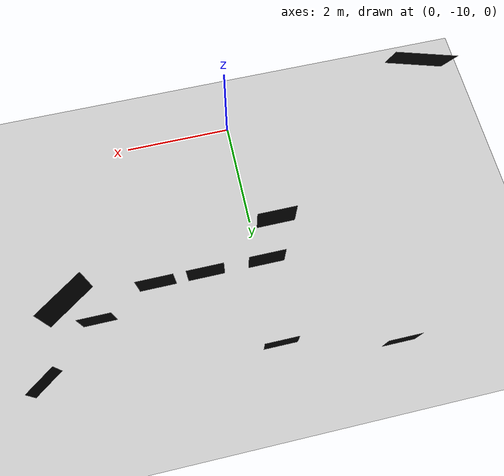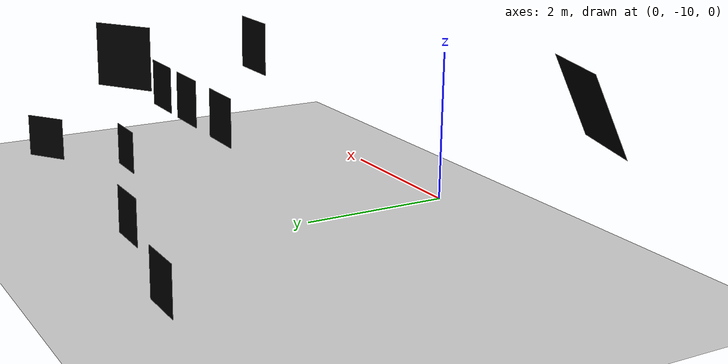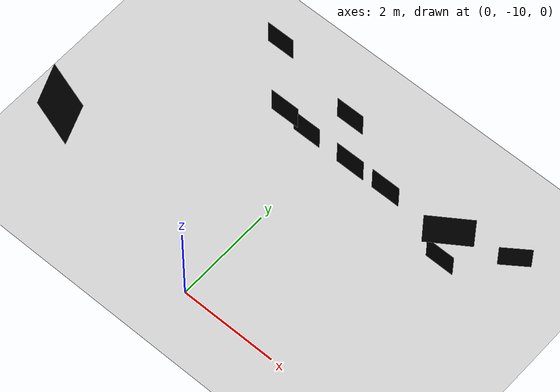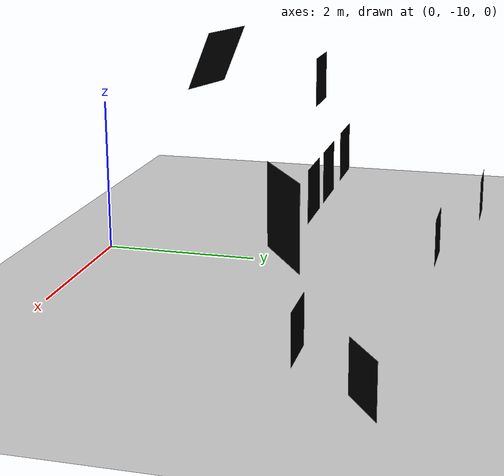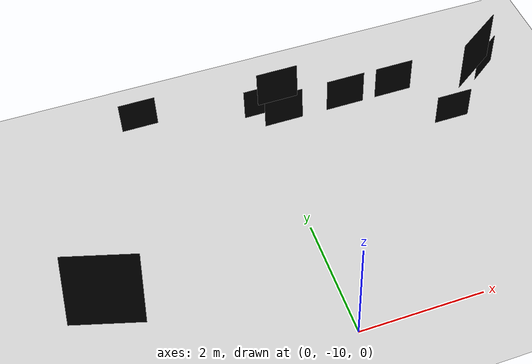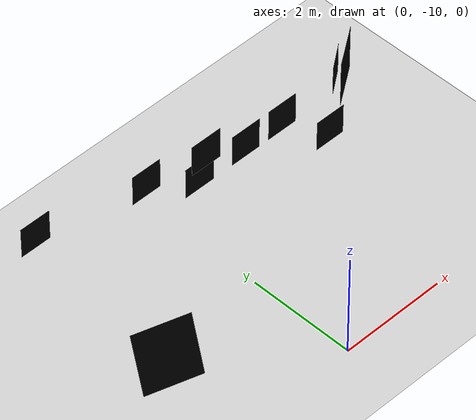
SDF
<sdf version="1.10">
 <world name="empty">
  <physics name="1ms" type="ignored">
   <max_step_size>0.001</max_step_size>
   <real_time_factor>1</real_time_factor>
   <real_time_update_rate>1000</real_time_update_rate>
  </physics>
  <plugin name="gz::sim::systems::Physics" filename="gz-sim-physics-system"/>
  <plugin name="gz::sim::systems::UserCommands" filename="gz-sim-user-commands-system"/>
  <plugin name="gz::sim::systems::SceneBroadcaster" filename="gz-sim-scene-broadcaster-system"/>
  <plugin name="gz::sim::systems::Contact" filename="gz-sim-contact-system"/>
  <plugin name="gz::sim::systems::Sensors" filename="gz-sim-sensors-system">
   <render_engine>ogre</render_engine>
  </plugin>
  <gravity>0 0 -9.8000000000000007</gravity>
  <magnetic_field>5.5644999999999998e-06 2.2875799999999999e-05 -4.2388400000000002e-05</magnetic_field>
  <atmosphere type="adiabatic"/>
  <scene>
   <ambient>0.400000006 0.400000006 0.400000006 1</ambient>
   <background>0.699999988 0.699999988 0.699999988 1</background>
   <shadows>true</shadows>
  </scene>
  <model name="ground_plane">
   <static>true</static>
   <link name="link">
    <collision name="collision">
     <geometry><plane><normal>0 0 1</normal><size>100 100</size></plane></geometry>
    </collision>
    <visual name="visual">
     <geometry><plane><normal>0 0 1</normal><size>100 100</size></plane></geometry>
     <material>
      <ambient>0.800000012 0.800000012 0.800000012 1</ambient>
      <diffuse>0.800000012 0.800000012 0.800000012 1</diffuse>
      <specular>0.800000012 0.800000012 0.800000012 1</specular>
     </material>
    </visual>
    <inertial>
     <mass>1</mass>
     <inertia><ixx>1</ixx><ixy>0</ixy><ixz>0</ixz><iyy>1</iyy><iyz>0</iyz><izz>1</izz></inertia>
    </inertial>
   </link>
  </model>
  <model name="drone_test">
   <static>true</static>
   <pose>0 -6.8000000000000016 1.5237000000000007 -1.5700000000000001 0 0</pose>
   <link name="link">
    <visual name="visual">
     <geometry><box><size>0.59999999999999998 0.59999999999999998 0.00050000000000000001</size></box></geometry>
     <material>
      <diffuse>0 0 0 1</diffuse>
      <specular>0 0 0 1</specular>
      <emissive>1 1 1 1</emissive>
      <pbr>
       <metal>
        <albedo_map>materials/textures/drone2.jpg</albedo_map>
        <emissive_map>materials/textures/drone2.jpg</emissive_map>
        <metalness>0.0</metalness>
        <roughness>1.0</roughness>
       </metal>
      </pbr>
     </material>
    </visual>
    <inertial>
     <mass>1</mass>
     <inertia><ixx>1</ixx><ixy>0</ixy><ixz>0</ixz><iyy>1</iyy><iyz>0</iyz><izz>1</izz></inertia>
    </inertial>
   </link>
  </model>
  <model name="drone_1">
   <static>true</static>
   <pose>1.0 -6.8000000000000016 1.5237000000000007 -1.5700000000000001 -1.5700 0</pose>
   <link name="link">
    <visual name="visual">
     <geometry><box><size>0.59999999999999998 0.59999999999999998 0.00050000000000000001</size></box></geometry>
     <material>
      <diffuse>0 0 0 1</diffuse>
      <specular>0 0 0 1</specular>
      <emissive>1 1 1 1</emissive>
      <pbr>
       <metal>
        <albedo_map>materials/textures/drone_1.jpeg</albedo_map>
        <emissive_map>materials/textures/drone_1.jpeg</emissive_map>
        <metalness>0.0</metalness>
        <roughness>1.0</roughness>
       </metal>
      </pbr>
     </material>
    </visual>
    <inertial>
     <mass>1</mass>
     <inertia><ixx>1</ixx><ixy>0</ixy><ixz>0</ixz><iyy>1</iyy><iyz>0</iyz><izz>1</izz></inertia>
    </inertial>
   </link>
  </model>
  <model name="drone_2">
   <static>true</static>
   <pose>1.8 -6.8000000000000016 1.5237000000000007 -1.5700000000000001 -1.5700 0</pose>
   <link name="link">
    <visual name="visual">
     <geometry><box><size>0.59999999999999998 0.59999999999999998 0.00050000000000000001</size></box></geometry>
     <material>
      <diffuse>0 0 0 1</diffuse>
      <specular>0 0 0 1</specular>
      <emissive>1 1 1 1</emissive>
      <pbr>
       <metal>
        <albedo_map>materials/textures/drone_2.jpg</albedo_map>
        <emissive_map>materials/textures/drone_2.jpg</emissive_map>
        <metalness>0.0</metalness>
        <roughness>1.0</roughness>
       </metal>
      </pbr>
     </material>
    </visual>
    <inertial>
     <mass>1</mass>
     <inertia><ixx>1</ixx><ixy>0</ixy><ixz>0</ixz><iyy>1</iyy><iyz>0</iyz><izz>1</izz></inertia>
    </inertial>
   </link>
  </model>
  <model name="drone_3">
   <static>true</static>
   <pose>-0.2 -7.15 2.4 -1.5700000000000001 -1.5700 0</pose>
   <link name="link">
    <visual name="visual">
     <geometry><box><size>0.59999999999999998 0.59999999999999998 0.00050000000000000001</size></box></geometry>
     <material>
      <diffuse>0 0 0 1</diffuse>
      <specular>0 0 0 1</specular>
      <emissive>1 1 1 1</emissive>
      <pbr>
       <metal>
        <albedo_map>materials/textures/drone_3.jpg</albedo_map>
        <emissive_map>materials/textures/drone_3.jpg</emissive_map>
        <metalness>0.0</metalness>
        <roughness>1.0</roughness>
       </metal>
      </pbr>
     </material>
    </visual>
    <inertial>
     <mass>1</mass>
     <inertia><ixx>1</ixx><ixy>0</ixy><ixz>0</ixz><iyy>1</iyy><iyz>0</iyz><izz>1</izz></inertia>
    </inertial>
   </link>
  </model>
  <model name="drone_4">
   <static>true</static>
   <pose>-2 -5.2 0.5 -1.5700000000000001 -1.5700 0</pose>
   <link name="link">
    <visual name="visual">
     <geometry><box><size>0.59999999999999998 0.59999999999999998 0.00050000000000000001</size></box></geometry>
     <material>
      <diffuse>0 0 0 1</diffuse>
      <specular>0 0 0 1</specular>
      <emissive>1 1 1 1</emissive>
      <pbr>
       <metal>
        <albedo_map>materials/textures/drone_4.jpg</albedo_map>
        <emissive_map>materials/textures/drone_4.jpg</emissive_map>
        <metalness>0.0</metalness>
        <roughness>1.0</roughness>
       </metal>
      </pbr>
     </material>
    </visual>
    <inertial>
     <mass>1</mass>
     <inertia><ixx>1</ixx><ixy>0</ixy><ixz>0</ixz><iyy>1</iyy><iyz>0</iyz><izz>1</izz></inertia>
    </inertial>
   </link>
  </model>
  <model name="drone_5">
   <static>true</static>
   <pose>0 -5.6 0.5 -1.5700000000000001 -1.5700 0</pose>
   <link name="link">
    <visual name="visual">
     <geometry><box><size>0.59999999999999998 0.59999999999999998 0.00050000000000000001</size></box></geometry>
     <material>
      <diffuse>0 0 0 1</diffuse>
      <specular>0 0 0 1</specular>
      <emissive>1 1 1 1</emissive>
      <pbr>
       <metal>
        <albedo_map>materials/textures/drone_5.jpg</albedo_map>
        <emissive_map>materials/textures/drone_5.jpg</emissive_map>
        <metalness>0.0</metalness>
        <roughness>1.0</roughness>
       </metal>
      </pbr>
     </material>
    </visual>
    <inertial>
     <mass>1</mass>
     <inertia><ixx>1</ixx><ixy>0</ixy><ixz>0</ixz><iyy>1</iyy><iyz>0</iyz><izz>1</izz></inertia>
    </inertial>
   </link>
  </model>
  <model name="drone_7">
   <static>true</static>
   <pose>3 -6.7 0.38 -1.5700000000000001 -1.5700 0</pose>
   <link name="link">
    <visual name="visual">
     <geometry><box><size>0.59999999999999998 0.59999999999999998 0.00050000000000000001</size></box></geometry>
     <material>
      <diffuse>0 0 0 1</diffuse>
      <specular>0 0 0 1</specular>
      <emissive>1 1 1 1</emissive>
      <pbr>
       <metal>
        <albedo_map>materials/textures/drone_7.jpeg</albedo_map>
        <emissive_map>materials/textures/drone_7.jpeg</emissive_map>
        <metalness>0.0</metalness>
        <roughness>1.0</roughness>
       </metal>
      </pbr>
     </material>
    </visual>
    <inertial>
     <mass>1</mass>
     <inertia><ixx>1</ixx><ixy>0</ixy><ixz>0</ixz><iyy>1</iyy><iyz>0</iyz><izz>1</izz></inertia>
    </inertial>
   </link>
  </model>
  <model name="drone_8">
   <static>true</static>
   <pose>4 -5.85 0.4 -0.944 -1.5700 0</pose>
   <link name="link">
    <visual name="visual">
     <geometry><box><size>0.59999999999999998 0.59999999999999998 0.00050000000000000001</size></box></geometry>
     <material>
      <diffuse>0 0 0 1</diffuse>
      <specular>0 0 0 1</specular>
      <emissive>1 1 1 1</emissive>
      <pbr>
       <metal>
        <albedo_map>materials/textures/drone_8.jpg</albedo_map>
        <emissive_map>materials/textures/drone_8.jpg</emissive_map>
        <metalness>0.0</metalness>
        <roughness>1.0</roughness>
       </metal>
      </pbr>
     </material>
    </visual>
    <inertial>
     <mass>1</mass>
     <inertia><ixx>1</ixx><ixy>0</ixy><ixz>0</ixz><iyy>1</iyy><iyz>0</iyz><izz>1</izz></inertia>
    </inertial>
   </link>
  </model>
  <model name="drone_9">
   <static>true</static>
   <pose>-3.3 -9.5 2.1 -3.1397 -1.1469 1.27</pose>
   <link name="link">
    <visual name="visual">
     <geometry><box><size>1.0 1.0 0.00050000000000000001</size></box></geometry>
     <material>
      <diffuse>0 0 0 1</diffuse>
      <specular>0 0 0 1</specular>
      <emissive>1 1 1 1</emissive>
      <pbr>
       <metal>
        <albedo_map>materials/textures/drone_9.jpg</albedo_map>
        <emissive_map>materials/textures/drone_9.jpg</emissive_map>
        <metalness>0.0</metalness>
        <roughness>1.0</roughness>
       </metal>
      </pbr>
     </material>
    </visual>
    <inertial>
     <mass>1</mass>
     <inertia><ixx>1</ixx><ixy>0</ixy><ixz>0</ixz><iyy>1</iyy><iyz>0</iyz><izz>1</izz></inertia>
    </inertial>
   </link>
  </model>
  <model name="drone_10">
   <static>true</static>
   <pose>3.2117 -6.8 1.65 -0.9668 -1.5700 0</pose>
   <link name="link">
    <visual name="visual">
     <geometry><box><size>0.9 0.9 0.00050000000000000001</size></box></geometry>
     <material>
      <diffuse>0 0 0 1</diffuse>
      <specular>0 0 0 1</specular>
      <emissive>1 1 1 1</emissive>
      <pbr>
       <metal>
        <albedo_map>materials/textures/drone_10.jpg</albedo_map>
        <emissive_map>materials/textures/drone_10.jpg</emissive_map>
        <metalness>0.0</metalness>
        <roughness>1.0</roughness>
       </metal>
      </pbr>
     </material>
    </visual>
    <inertial>
     <mass>1</mass>
     <inertia><ixx>1</ixx><ixy>0</ixy><ixz>0</ixz><iyy>1</iyy><iyz>0</iyz><izz>1</izz></inertia>
    </inertial>
   </link>
  </model>
  <light name="sun" type="directional">
   <pose>0 0 10 0 0 0</pose>
   <intensity>1</intensity>
   <direction>-0.5 0.10000000000000001 -0.90000000000000002</direction>
   <diffuse>0.800000012 0.800000012 0.800000012 1</diffuse>
   <specular>0.200000003 0.200000003 0.200000003 1</specular>
   <attenuation>
    <range>1000</range>
    <linear>0.0099999997764825821</linear>
    <constant>0.89999997615814209</constant>
    <quadratic>0.0010000000474974513</quadratic>
   </attenuation>
   <spot><inner_angle>0</inner_angle><outer_angle>0</outer_angle><falloff>0</falloff></spot>
  </light>
 </world>
</sdf>
